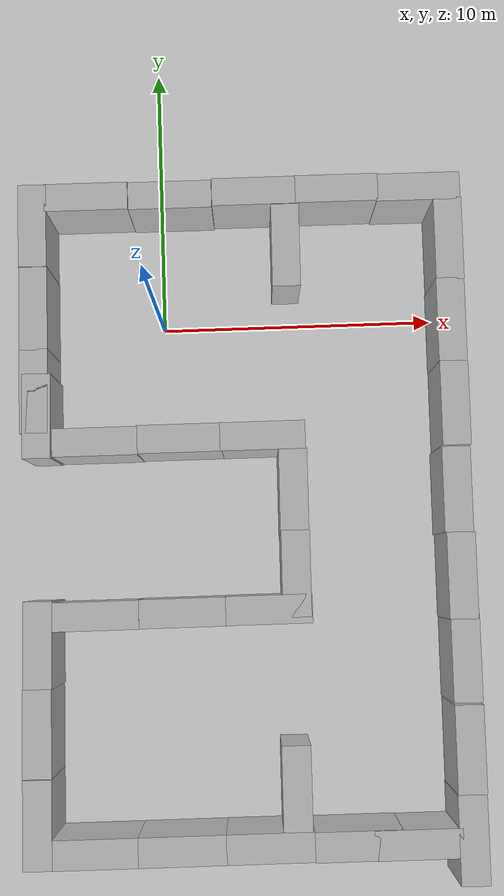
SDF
<sdf version="1.6">
 <world name="default">
  <scene>
   <sky><sunset>20</sunset></sky>
   <ambient>0.4 0.4 0.4 1</ambient>
   <background>0.7 0.7 0.7 1</background>
   <shadows>1</shadows>
  </scene>
  <spherical_coordinates>
   <surface_model>EARTH_WGS84</surface_model>
   <world_frame_orientation>ENU</world_frame_orientation>
   <latitude_deg>32.776</latitude_deg>
   <longitude_deg>39.2314</longitude_deg>
   <elevation>0</elevation>
   <heading_deg>0</heading_deg>
  </spherical_coordinates>
  <light name="sun" type="directional">
   <pose>0 0 10 0 -0 0</pose>
   <diffuse>0.8 0.8 0.8 1</diffuse>
   <specular>0.2 0.2 0.2 1</specular>
   <attenuation>
    <range>1000</range>
    <constant>0.9</constant>
    <linear>0.01</linear>
    <quadratic>0.001</quadratic>
   </attenuation>
   <direction>-0.5 0.1 -0.9</direction>
  </light>
  <model name="ground_plane">
   <static>1</static>
   <link name="link">
    <collision name="collision">
     <geometry><plane><normal>0 0 1</normal><size>100 100</size></plane></geometry>
     <surface>
      <contact><collide_bitmask>65535</collide_bitmask></contact>
      <friction><ode><mu>100</mu><mu2>50</mu2></ode></friction>
     </surface>
    </collision>
    <visual name="visual">
     <cast_shadows>0</cast_shadows>
     <geometry><plane><normal>0 0 1</normal><size>100 100</size></plane></geometry>
     <material>
      <script><uri>file://media/materials/scripts/gazebo.material</uri><name>Gazebo/Grey</name></script>
     </material>
    </visual>
   </link>
  </model>
  <gravity>0 0 -9.8</gravity>
  <magnetic_field>6e-06 2.3e-05 -4.2e-05</magnetic_field>
  <atmosphere type="adiabatic"/>
  <physics name="default_physics" default="0" type="ode">
   <max_step_size>0.001</max_step_size>
   <real_time_factor>1</real_time_factor>
   <real_time_update_rate>1000</real_time_update_rate>
  </physics>
  <model name="brick_box_3x1x3">
   <static>1</static>
   <link name="chassis">
    <pose>0 0 1.5 0 -0 0</pose>
    <collision name="collision"><geometry><box><size>3 1 3</size></box></geometry></collision>
    <visual name="visual">
     <geometry><mesh><uri>model://brick_box_3x1x3/meshes/simple_box.dae</uri><scale>3 1 3</scale></mesh></geometry>
     <material>
      <script>
       <uri>model://brick_box_3x1x3/materials/scripts</uri>
       <uri>model://brick_box_3x1x3/materials/textures</uri>
       <name>BrickBox/Diffuse</name>
      </script>
     </material>
    </visual>
   </link>
   <pose>3.47428 4.41931 0 0 -0 0</pose>
  </model>
  <model name="brick_box_3x1x3_0">
   <static>1</static>
   <link name="chassis">
    <pose>0 0 1.5 0 -0 0</pose>
    <collision name="collision"><geometry><box><size>3 1 3</size></box></geometry></collision>
    <visual name="visual">
     <geometry><mesh><uri>model://brick_box_3x1x3/meshes/simple_box.dae</uri><scale>3 1 3</scale></mesh></geometry>
     <material>
      <script>
       <uri>model://brick_box_3x1x3/materials/scripts</uri>
       <uri>model://brick_box_3x1x3/materials/textures</uri>
       <name>BrickBox/Diffuse</name>
      </script>
     </material>
    </visual>
   </link>
   <pose>0.465306 4.37155 0 0 -0 0</pose>
  </model>
  <model name="brick_box_3x1x3_1">
   <static>1</static>
   <link name="chassis">
    <pose>0 0 1.5 0 -0 0</pose>
    <collision name="collision"><geometry><box><size>3 1 3</size></box></geometry></collision>
    <visual name="visual">
     <geometry><mesh><uri>model://brick_box_3x1x3/meshes/simple_box.dae</uri><scale>3 1 3</scale></mesh></geometry>
     <material>
      <script>
       <uri>model://brick_box_3x1x3/materials/scripts</uri>
       <uri>model://brick_box_3x1x3/materials/textures</uri>
       <name>BrickBox/Diffuse</name>
      </script>
     </material>
    </visual>
   </link>
   <pose>-2.54823 4.39779 0 0 -0 0</pose>
  </model>
  <model name="brick_box_3x1x3_2">
   <static>1</static>
   <link name="chassis">
    <pose>0 0 1.5 0 -0 0</pose>
    <collision name="collision"><geometry><box><size>3 1 3</size></box></geometry></collision>
    <visual name="visual">
     <geometry><mesh><uri>model://brick_box_3x1x3/meshes/simple_box.dae</uri><scale>3 1 3</scale></mesh></geometry>
     <material>
      <script>
       <uri>model://brick_box_3x1x3/materials/scripts</uri>
       <uri>model://brick_box_3x1x3/materials/textures</uri>
       <name>BrickBox/Diffuse</name>
      </script>
     </material>
    </visual>
   </link>
   <pose>3.51177 -4.42052 0 0 -0 0</pose>
  </model>
  <model name="brick_box_3x1x3_3">
   <static>1</static>
   <link name="chassis">
    <pose>0 0 1.5 0 -0 0</pose>
    <collision name="collision"><geometry><box><size>3 1 3</size></box></geometry></collision>
    <visual name="visual">
     <geometry><mesh><uri>model://brick_box_3x1x3/meshes/simple_box.dae</uri><scale>3 1 3</scale></mesh></geometry>
     <material>
      <script>
       <uri>model://brick_box_3x1x3/materials/scripts</uri>
       <uri>model://brick_box_3x1x3/materials/textures</uri>
       <name>BrickBox/Diffuse</name>
      </script>
     </material>
    </visual>
   </link>
   <pose>0.578398 -4.42308 0 0 -0 0</pose>
  </model>
  <model name="brick_box_3x1x3_4">
   <static>1</static>
   <link name="chassis">
    <pose>0 0 1.5 0 -0 0</pose>
    <collision name="collision"><geometry><box><size>3 1 3</size></box></geometry></collision>
    <visual name="visual">
     <geometry><mesh><uri>model://brick_box_3x1x3/meshes/simple_box.dae</uri><scale>3 1 3</scale></mesh></geometry>
     <material>
      <script>
       <uri>model://brick_box_3x1x3/materials/scripts</uri>
       <uri>model://brick_box_3x1x3/materials/textures</uri>
       <name>BrickBox/Diffuse</name>
      </script>
     </material>
    </visual>
   </link>
   <pose>-2.39127 -4.44933 0 0 -0 0</pose>
  </model>
  <model name="brick_box_3x1x3_6">
   <static>1</static>
   <link name="chassis">
    <pose>0 0 1.5 0 -0 0</pose>
    <collision name="collision"><geometry><box><size>3 1 3</size></box></geometry></collision>
    <visual name="visual">
     <geometry><mesh><uri>model://brick_box_3x1x3/meshes/simple_box.dae</uri><scale>3 1 3</scale></mesh></geometry>
     <material>
      <script>
       <uri>model://brick_box_3x1x3/materials/scripts</uri>
       <uri>model://brick_box_3x1x3/materials/textures</uri>
       <name>BrickBox/Diffuse</name>
      </script>
     </material>
    </visual>
   </link>
   <pose>3.53825 -10.4786 0 0 -0 0</pose>
  </model>
  <model name="brick_box_3x1x3_7">
   <static>1</static>
   <link name="chassis">
    <pose>0 0 1.5 0 -0 0</pose>
    <collision name="collision"><geometry><box><size>3 1 3</size></box></geometry></collision>
    <visual name="visual">
     <geometry><mesh><uri>model://brick_box_3x1x3/meshes/simple_box.dae</uri><scale>3 1 3</scale></mesh></geometry>
     <material>
      <script>
       <uri>model://brick_box_3x1x3/materials/scripts</uri>
       <uri>model://brick_box_3x1x3/materials/textures</uri>
       <name>BrickBox/Diffuse</name>
      </script>
     </material>
    </visual>
   </link>
   <pose>0.538281 -10.4893 0 0 -0 0</pose>
  </model>
  <model name="brick_box_3x1x3_8">
   <static>1</static>
   <link name="chassis">
    <pose>0 0 1.5 0 -0 0</pose>
    <collision name="collision"><geometry><box><size>3 1 3</size></box></geometry></collision>
    <visual name="visual">
     <geometry><mesh><uri>model://brick_box_3x1x3/meshes/simple_box.dae</uri><scale>3 1 3</scale></mesh></geometry>
     <material>
      <script>
       <uri>model://brick_box_3x1x3/materials/scripts</uri>
       <uri>model://brick_box_3x1x3/materials/textures</uri>
       <name>BrickBox/Diffuse</name>
      </script>
     </material>
    </visual>
   </link>
   <pose>-2.4629 -10.5025 0 0 -0 0</pose>
  </model>
  <model name="brick_box_3x1x3_5_clone_1">
   <static>1</static>
   <link name="chassis">
    <pose>0 0 1.5 0 -0 0</pose>
    <collision name="collision"><geometry><box><size>3 1 3</size></box></geometry></collision>
    <visual name="visual">
     <geometry><mesh><uri>model://brick_box_3x1x3/meshes/simple_box.dae</uri><scale>3 1 3</scale></mesh></geometry>
     <material>
      <script>
       <uri>model://brick_box_3x1x3/materials/scripts</uri>
       <uri>model://brick_box_3x1x3/materials/textures</uri>
       <name>BrickBox/Diffuse</name>
      </script>
     </material>
    </visual>
   </link>
   <pose>-4.4706 -11.439 0 0 0 -1.58069</pose>
  </model>
  <model name="brick_box_3x1x3_5_clone_2">
   <static>1</static>
   <link name="chassis">
    <pose>0 0 1.5 0 -0 0</pose>
    <collision name="collision"><geometry><box><size>3 1 3</size></box></geometry></collision>
    <visual name="visual">
     <geometry><mesh><uri>model://brick_box_3x1x3/meshes/simple_box.dae</uri><scale>3 1 3</scale></mesh></geometry>
     <material>
      <script>
       <uri>model://brick_box_3x1x3/materials/scripts</uri>
       <uri>model://brick_box_3x1x3/materials/textures</uri>
       <name>BrickBox/Diffuse</name>
      </script>
     </material>
    </visual>
   </link>
   <pose>-4.52357 -14.4326 0 0 0 -1.58069</pose>
  </model>
  <model name="brick_box_3x1x3_5_clone_3">
   <static>1</static>
   <link name="chassis">
    <pose>0 0 1.5 0 -0 0</pose>
    <collision name="collision"><geometry><box><size>3 1 3</size></box></geometry></collision>
    <visual name="visual">
     <geometry><mesh><uri>model://brick_box_3x1x3/meshes/simple_box.dae</uri><scale>3 1 3</scale></mesh></geometry>
     <material>
      <script>
       <uri>model://brick_box_3x1x3/materials/scripts</uri>
       <uri>model://brick_box_3x1x3/materials/textures</uri>
       <name>BrickBox/Diffuse</name>
      </script>
     </material>
    </visual>
   </link>
   <pose>-4.54945 -17.4591 0 0 0 -1.58069</pose>
  </model>
  <model name="brick_box_3x1x3_6_clone">
   <static>1</static>
   <link name="chassis">
    <pose>0 0 1.5 0 -0 0</pose>
    <collision name="collision"><geometry><box><size>3 1 3</size></box></geometry></collision>
    <visual name="visual">
     <geometry><mesh><uri>model://brick_box_3x1x3/meshes/simple_box.dae</uri><scale>3 1 3</scale></mesh></geometry>
     <material>
      <script>
       <uri>model://brick_box_3x1x3/materials/scripts</uri>
       <uri>model://brick_box_3x1x3/materials/textures</uri>
       <name>BrickBox/Diffuse</name>
      </script>
     </material>
    </visual>
   </link>
   <pose>-2.57598 -18.4654 0 0 -0 0</pose>
  </model>
  <model name="brick_box_3x1x3_6_clone_0">
   <static>1</static>
   <link name="chassis">
    <pose>0 0 1.5 0 -0 0</pose>
    <collision name="collision"><geometry><box><size>3 1 3</size></box></geometry></collision>
    <visual name="visual">
     <geometry><mesh><uri>model://brick_box_3x1x3/meshes/simple_box.dae</uri><scale>3 1 3</scale></mesh></geometry>
     <material>
      <script>
       <uri>model://brick_box_3x1x3/materials/scripts</uri>
       <uri>model://brick_box_3x1x3/materials/textures</uri>
       <name>BrickBox/Diffuse</name>
      </script>
     </material>
    </visual>
   </link>
   <pose>0.34568 -18.4653 0 0 -0 0</pose>
  </model>
  <model name="brick_box_3x1x3_6_clone_1">
   <static>1</static>
   <link name="chassis">
    <pose>0 0 1.5 0 -0 0</pose>
    <collision name="collision"><geometry><box><size>3 1 3</size></box></geometry></collision>
    <visual name="visual">
     <geometry><mesh><uri>model://brick_box_3x1x3/meshes/simple_box.dae</uri><scale>3 1 3</scale></mesh></geometry>
     <material>
      <script>
       <uri>model://brick_box_3x1x3/materials/scripts</uri>
       <uri>model://brick_box_3x1x3/materials/textures</uri>
       <name>BrickBox/Diffuse</name>
      </script>
     </material>
    </visual>
   </link>
   <pose>3.33303 -18.4637 0 0 -0 0</pose>
  </model>
  <model name="brick_box_3x1x3_5_clone_clone">
   <static>1</static>
   <link name="chassis">
    <pose>0 0 1.5 0 -0 0</pose>
    <collision name="collision"><geometry><box><size>3 1 3</size></box></geometry></collision>
    <visual name="visual">
     <geometry><mesh><uri>model://brick_box_3x1x3/meshes/simple_box.dae</uri><scale>3 1 3</scale></mesh></geometry>
     <material>
      <script>
       <uri>model://brick_box_3x1x3/materials/scripts</uri>
       <uri>model://brick_box_3x1x3/materials/textures</uri>
       <name>BrickBox/Diffuse</name>
      </script>
     </material>
    </visual>
   </link>
   <pose>4.53616 -6.3944 0 0 0 -1.58069</pose>
  </model>
  <model name="brick_box_3x1x3_5_clone_clone_0">
   <static>1</static>
   <link name="chassis">
    <pose>0 0 1.5 0 -0 0</pose>
    <collision name="collision"><geometry><box><size>3 1 3</size></box></geometry></collision>
    <visual name="visual">
     <geometry><mesh><uri>model://brick_box_3x1x3/meshes/simple_box.dae</uri><scale>3 1 3</scale></mesh></geometry>
     <material>
      <script>
       <uri>model://brick_box_3x1x3/materials/scripts</uri>
       <uri>model://brick_box_3x1x3/materials/textures</uri>
       <name>BrickBox/Diffuse</name>
      </script>
     </material>
    </visual>
   </link>
   <pose>4.52325 -9.26342 0 0 0 -1.58069</pose>
  </model>
  <model name="brick_box_3x1x3_5_clone_clone_1">
   <static>1</static>
   <link name="chassis">
    <pose>0 0 1.5 0 -0 0</pose>
    <collision name="collision"><geometry><box><size>3 1 3</size></box></geometry></collision>
    <visual name="visual">
     <geometry><mesh><uri>model://brick_box_3x1x3/meshes/simple_box.dae</uri><scale>3 1 3</scale></mesh></geometry>
     <material>
      <script>
       <uri>model://brick_box_3x1x3/materials/scripts</uri>
       <uri>model://brick_box_3x1x3/materials/textures</uri>
       <name>BrickBox/Diffuse</name>
      </script>
     </material>
    </visual>
   </link>
   <pose>4.56519 2.40327 0 0 0 -1.58069</pose>
  </model>
  <model name="brick_box_3x1x3_5_clone_clone_2">
   <static>1</static>
   <link name="chassis">
    <pose>0 0 1.5 0 -0 0</pose>
    <collision name="collision"><geometry><box><size>3 1 3</size></box></geometry></collision>
    <visual name="visual">
     <geometry><mesh><uri>model://brick_box_3x1x3/meshes/simple_box.dae</uri><scale>3 1 3</scale></mesh></geometry>
     <material>
      <script>
       <uri>model://brick_box_3x1x3/materials/scripts</uri>
       <uri>model://brick_box_3x1x3/materials/textures</uri>
       <name>BrickBox/Diffuse</name>
      </script>
     </material>
    </visual>
   </link>
   <pose>4.29442 -16.5957 0 0 0 -1.58069</pose>
  </model>
  <model name="brick_box_3x1x3_clone">
   <static>1</static>
   <link name="chassis">
    <pose>0 0 1.5 0 -0 0</pose>
    <collision name="collision"><geometry><box><size>3 1 3</size></box></geometry></collision>
    <visual name="visual">
     <geometry><mesh><uri>model://brick_box_3x1x3/meshes/simple_box.dae</uri><scale>3 1 3</scale></mesh></geometry>
     <material>
      <script>
       <uri>model://brick_box_3x1x3/materials/scripts</uri>
       <uri>model://brick_box_3x1x3/materials/textures</uri>
       <name>BrickBox/Diffuse</name>
      </script>
     </material>
    </visual>
   </link>
   <pose>6.44506 4.42997 0 0 -0 0</pose>
  </model>
  <model name="brick_box_3x1x3_clone_0">
   <static>1</static>
   <link name="chassis">
    <pose>0 0 1.5 0 -0 0</pose>
    <collision name="collision"><geometry><box><size>3 1 3</size></box></geometry></collision>
    <visual name="visual">
     <geometry><mesh><uri>model://brick_box_3x1x3/meshes/simple_box.dae</uri><scale>3 1 3</scale></mesh></geometry>
     <material>
      <script>
       <uri>model://brick_box_3x1x3/materials/scripts</uri>
       <uri>model://brick_box_3x1x3/materials/textures</uri>
       <name>BrickBox/Diffuse</name>
      </script>
     </material>
    </visual>
   </link>
   <pose>9.39147 4.3939 0 0 -0 0</pose>
  </model>
  <model name="brick_box_3x1x3_5_clone_clone_1_clone">
   <static>1</static>
   <link name="chassis">
    <pose>0 0 1.5 0 -0 0</pose>
    <collision name="collision"><geometry><box><size>3 1 3</size></box></geometry></collision>
    <visual name="visual">
     <geometry><mesh><uri>model://brick_box_3x1x3/meshes/simple_box.dae</uri><scale>3 1 3</scale></mesh></geometry>
     <material>
      <script>
       <uri>model://brick_box_3x1x3/materials/scripts</uri>
       <uri>model://brick_box_3x1x3/materials/textures</uri>
       <name>BrickBox/Diffuse</name>
      </script>
     </material>
    </visual>
   </link>
   <pose>10.3985 2.46486 0 0 0 -1.58069</pose>
  </model>
  <model name="brick_box_3x1x3_5_clone_clone_1_clone_0">
   <static>1</static>
   <link name="chassis">
    <pose>0 0 1.5 0 -0 0</pose>
    <collision name="collision"><geometry><box><size>3 1 3</size></box></geometry></collision>
    <visual name="visual">
     <geometry><mesh><uri>model://brick_box_3x1x3/meshes/simple_box.dae</uri><scale>3 1 3</scale></mesh></geometry>
     <material>
      <script>
       <uri>model://brick_box_3x1x3/materials/scripts</uri>
       <uri>model://brick_box_3x1x3/materials/textures</uri>
       <name>BrickBox/Diffuse</name>
      </script>
     </material>
    </visual>
   </link>
   <pose>10.3539 -0.489907 0 0 0 -1.58069</pose>
  </model>
  <model name="brick_box_3x1x3_5_clone_clone_1_clone_2_clone_0">
   <static>1</static>
   <link name="chassis">
    <pose>0 0 1.5 0 -0 0</pose>
    <collision name="collision"><geometry><box><size>3 1 3</size></box></geometry></collision>
    <visual name="visual">
     <geometry><mesh><uri>model://brick_box_3x1x3/meshes/simple_box.dae</uri><scale>3 1 3</scale></mesh></geometry>
     <material>
      <script>
       <uri>model://brick_box_3x1x3/materials/scripts</uri>
       <uri>model://brick_box_3x1x3/materials/textures</uri>
       <name>BrickBox/Diffuse</name>
      </script>
     </material>
    </visual>
   </link>
   <pose>-4.48178 3.39273 0 0 0 -1.58069</pose>
  </model>
  <model name="brick_box_3x1x3_5_clone_clone_1_clone_0_clone">
   <static>1</static>
   <link name="chassis">
    <pose>0 0 1.5 0 -0 0</pose>
    <collision name="collision"><geometry><box><size>3 1 3</size></box></geometry></collision>
    <visual name="visual">
     <geometry><mesh><uri>model://brick_box_3x1x3/meshes/simple_box.dae</uri><scale>3 1 3</scale></mesh></geometry>
     <material>
      <script>
       <uri>model://brick_box_3x1x3/materials/scripts</uri>
       <uri>model://brick_box_3x1x3/materials/textures</uri>
       <name>BrickBox/Diffuse</name>
      </script>
     </material>
    </visual>
   </link>
   <pose>-4.48073 0.380773 0 0 0 -1.58069</pose>
  </model>
  <model name="brick_box_3x1x3_5_clone_clone_1_clone_0_clone_0">
   <static>1</static>
   <link name="chassis">
    <pose>0 0 1.5 0 -0 0</pose>
    <collision name="collision"><geometry><box><size>3 1 3</size></box></geometry></collision>
    <visual name="visual">
     <geometry><mesh><uri>model://brick_box_3x1x3/meshes/simple_box.dae</uri><scale>3 1 3</scale></mesh></geometry>
     <material>
      <script>
       <uri>model://brick_box_3x1x3/materials/scripts</uri>
       <uri>model://brick_box_3x1x3/materials/textures</uri>
       <name>BrickBox/Diffuse</name>
      </script>
     </material>
    </visual>
   </link>
   <pose>-4.50553 -2.57735 0 0 0 -1.58069</pose>
  </model>
  <model name="brick_box_3x1x3_5_clone_clone_1_clone_0_clone_1">
   <static>1</static>
   <link name="chassis">
    <pose>0 0 1.5 0 -0 0</pose>
    <collision name="collision"><geometry><box><size>3 1 3</size></box></geometry></collision>
    <visual name="visual">
     <geometry><mesh><uri>model://brick_box_3x1x3/meshes/simple_box.dae</uri><scale>3 1 3</scale></mesh></geometry>
     <material>
      <script>
       <uri>model://brick_box_3x1x3/materials/scripts</uri>
       <uri>model://brick_box_3x1x3/materials/textures</uri>
       <name>BrickBox/Diffuse</name>
      </script>
     </material>
    </visual>
   </link>
   <pose>-4.42695 -3.47202 0 0 0 -1.58069</pose>
  </model>
  <model name="brick_box_3x1x3_5_clone_clone_1_clone_0_clone_2">
   <static>1</static>
   <link name="chassis">
    <pose>0 0 1.5 0 -0 0</pose>
    <collision name="collision"><geometry><box><size>3 1 3</size></box></geometry></collision>
    <visual name="visual">
     <geometry><mesh><uri>model://brick_box_3x1x3/meshes/simple_box.dae</uri><scale>3 1 3</scale></mesh></geometry>
     <material>
      <script>
       <uri>model://brick_box_3x1x3/materials/scripts</uri>
       <uri>model://brick_box_3x1x3/materials/textures</uri>
       <name>BrickBox/Diffuse</name>
      </script>
     </material>
    </visual>
   </link>
   <pose>10.338 -3.47043 0 0 0 -1.58069</pose>
  </model>
  <model name="brick_box_3x1x3_5_clone_clone_1_clone_0_clone_3">
   <static>1</static>
   <link name="chassis">
    <pose>0 0 1.5 0 -0 0</pose>
    <collision name="collision"><geometry><box><size>3 1 3</size></box></geometry></collision>
    <visual name="visual">
     <geometry><mesh><uri>model://brick_box_3x1x3/meshes/simple_box.dae</uri><scale>3 1 3</scale></mesh></geometry>
     <material>
      <script>
       <uri>model://brick_box_3x1x3/materials/scripts</uri>
       <uri>model://brick_box_3x1x3/materials/textures</uri>
       <name>BrickBox/Diffuse</name>
      </script>
     </material>
    </visual>
   </link>
   <pose>10.2586 -6.5207 0 0 0 -1.58069</pose>
  </model>
  <model name="brick_box_3x1x3_5_clone_clone_1_clone_0_clone_4">
   <static>1</static>
   <link name="chassis">
    <pose>0 0 1.5 0 -0 0</pose>
    <collision name="collision"><geometry><box><size>3 1 3</size></box></geometry></collision>
    <visual name="visual">
     <geometry><mesh><uri>model://brick_box_3x1x3/meshes/simple_box.dae</uri><scale>3 1 3</scale></mesh></geometry>
     <material>
      <script>
       <uri>model://brick_box_3x1x3/materials/scripts</uri>
       <uri>model://brick_box_3x1x3/materials/textures</uri>
       <name>BrickBox/Diffuse</name>
      </script>
     </material>
    </visual>
   </link>
   <pose>10.2793 -9.5167 0 0 0 -1.58069</pose>
  </model>
  <model name="brick_box_3x1x3_5_clone_clone_1_clone_0_clone_5">
   <static>1</static>
   <link name="chassis">
    <pose>0 0 1.5 0 -0 0</pose>
    <collision name="collision"><geometry><box><size>3 1 3</size></box></geometry></collision>
    <visual name="visual">
     <geometry><mesh><uri>model://brick_box_3x1x3/meshes/simple_box.dae</uri><scale>3 1 3</scale></mesh></geometry>
     <material>
      <script>
       <uri>model://brick_box_3x1x3/materials/scripts</uri>
       <uri>model://brick_box_3x1x3/materials/textures</uri>
       <name>BrickBox/Diffuse</name>
      </script>
     </material>
    </visual>
   </link>
   <pose>10.2725 -12.358 0 0 0 -1.58069</pose>
  </model>
  <model name="brick_box_3x1x3_5_clone_clone_1_clone_0_clone_6">
   <static>1</static>
   <link name="chassis">
    <pose>0 0 1.5 0 -0 0</pose>
    <collision name="collision"><geometry><box><size>3 1 3</size></box></geometry></collision>
    <visual name="visual">
     <geometry><mesh><uri>model://brick_box_3x1x3/meshes/simple_box.dae</uri><scale>3 1 3</scale></mesh></geometry>
     <material>
      <script>
       <uri>model://brick_box_3x1x3/materials/scripts</uri>
       <uri>model://brick_box_3x1x3/materials/textures</uri>
       <name>BrickBox/Diffuse</name>
      </script>
     </material>
    </visual>
   </link>
   <pose>10.258 -15.4205 0 0 0 -1.58069</pose>
  </model>
  <model name="brick_box_3x1x3_5_clone_clone_1_clone_0_clone_7">
   <static>1</static>
   <link name="chassis">
    <pose>0 0 1.5 0 -0 0</pose>
    <collision name="collision"><geometry><box><size>3 1 3</size></box></geometry></collision>
    <visual name="visual">
     <geometry><mesh><uri>model://brick_box_3x1x3/meshes/simple_box.dae</uri><scale>3 1 3</scale></mesh></geometry>
     <material>
      <script>
       <uri>model://brick_box_3x1x3/materials/scripts</uri>
       <uri>model://brick_box_3x1x3/materials/textures</uri>
       <name>BrickBox/Diffuse</name>
      </script>
     </material>
    </visual>
   </link>
   <pose>10.2136 -18.4203 0 0 0 -1.58069</pose>
  </model>
  <model name="brick_box_3x1x3_clone_0_clone">
   <static>1</static>
   <link name="chassis">
    <pose>0 0 1.5 0 -0 0</pose>
    <collision name="collision"><geometry><box><size>3 1 3</size></box></geometry></collision>
    <visual name="visual">
     <geometry><mesh><uri>model://brick_box_3x1x3/meshes/simple_box.dae</uri><scale>3 1 3</scale></mesh></geometry>
     <material>
      <script>
       <uri>model://brick_box_3x1x3/materials/scripts</uri>
       <uri>model://brick_box_3x1x3/materials/textures</uri>
       <name>BrickBox/Diffuse</name>
      </script>
     </material>
    </visual>
   </link>
   <pose>6.32894 -18.4869 0 0 -0 0</pose>
  </model>
  <model name="brick_box_3x1x3_clone_0_clone_0">
   <static>1</static>
   <link name="chassis">
    <pose>0 0 1.5 0 -0 0</pose>
    <collision name="collision"><geometry><box><size>3 1 3</size></box></geometry></collision>
    <visual name="visual">
     <geometry><mesh><uri>model://brick_box_3x1x3/meshes/simple_box.dae</uri><scale>3 1 3</scale></mesh></geometry>
     <material>
      <script>
       <uri>model://brick_box_3x1x3/materials/scripts</uri>
       <uri>model://brick_box_3x1x3/materials/textures</uri>
       <name>BrickBox/Diffuse</name>
      </script>
     </material>
    </visual>
   </link>
   <pose>8.35051 -18.5011 0 0 -0 0</pose>
  </model>
 </world>
</sdf>
